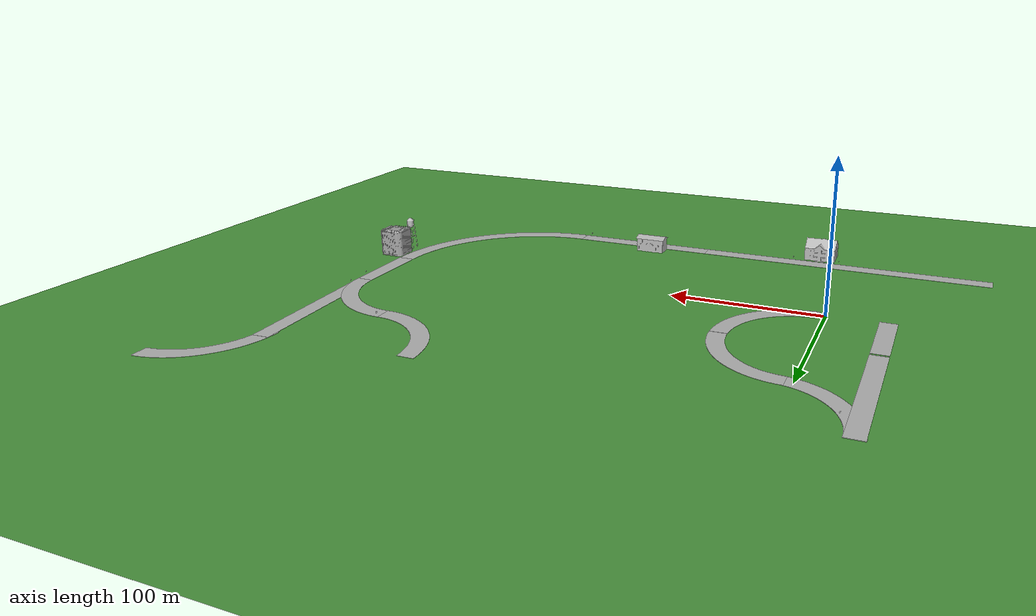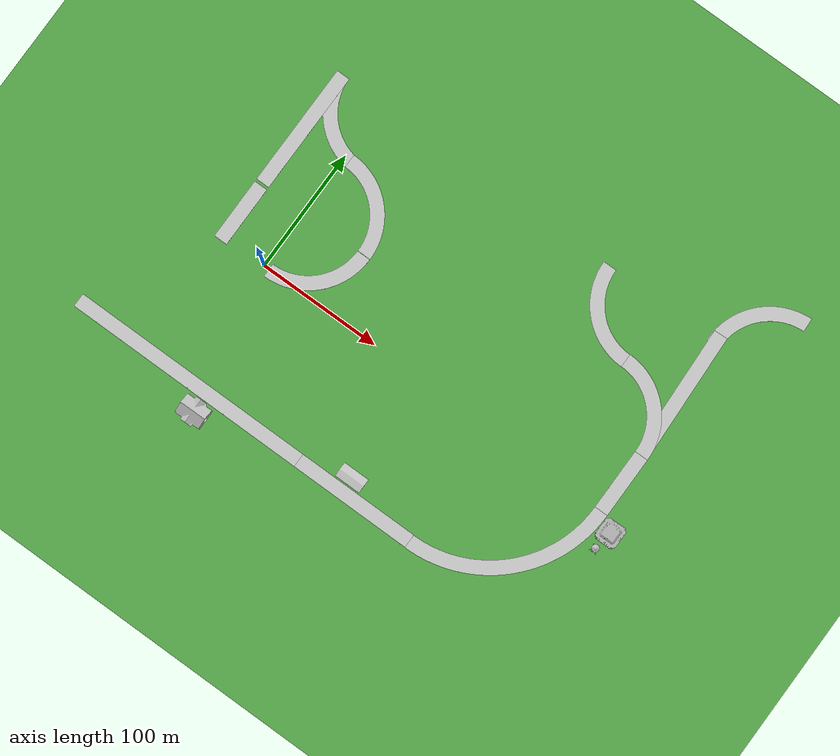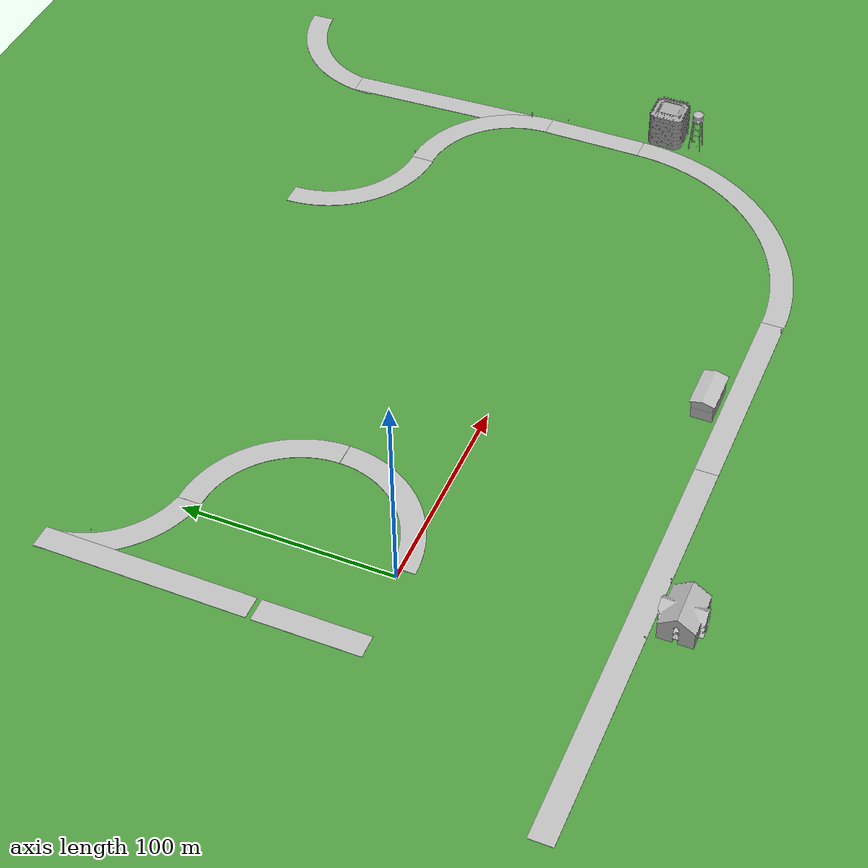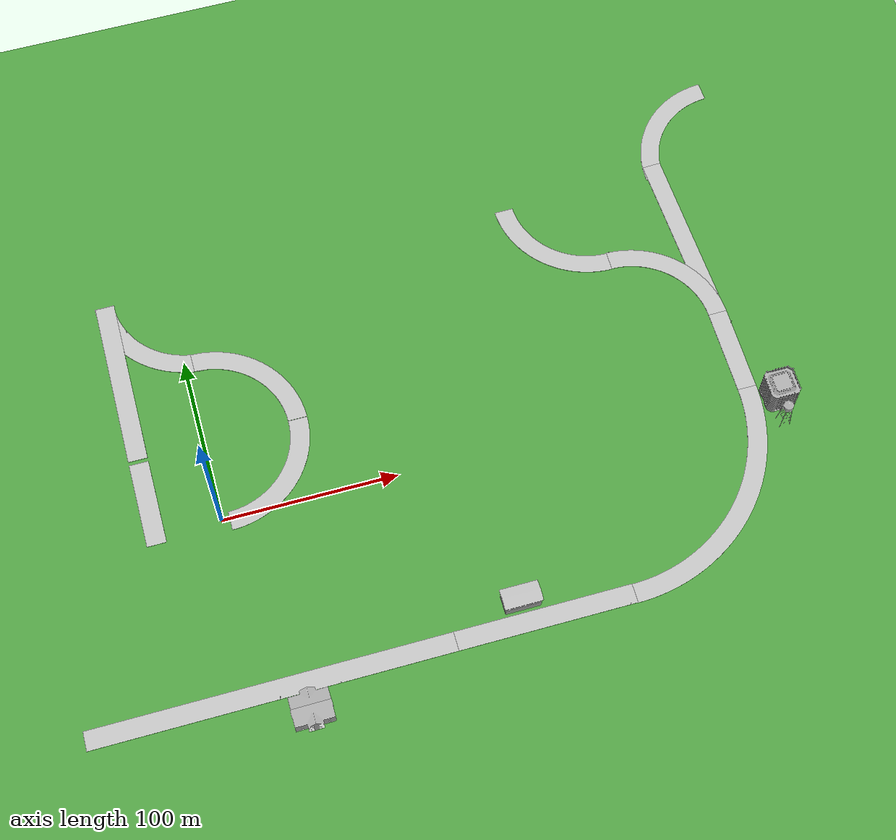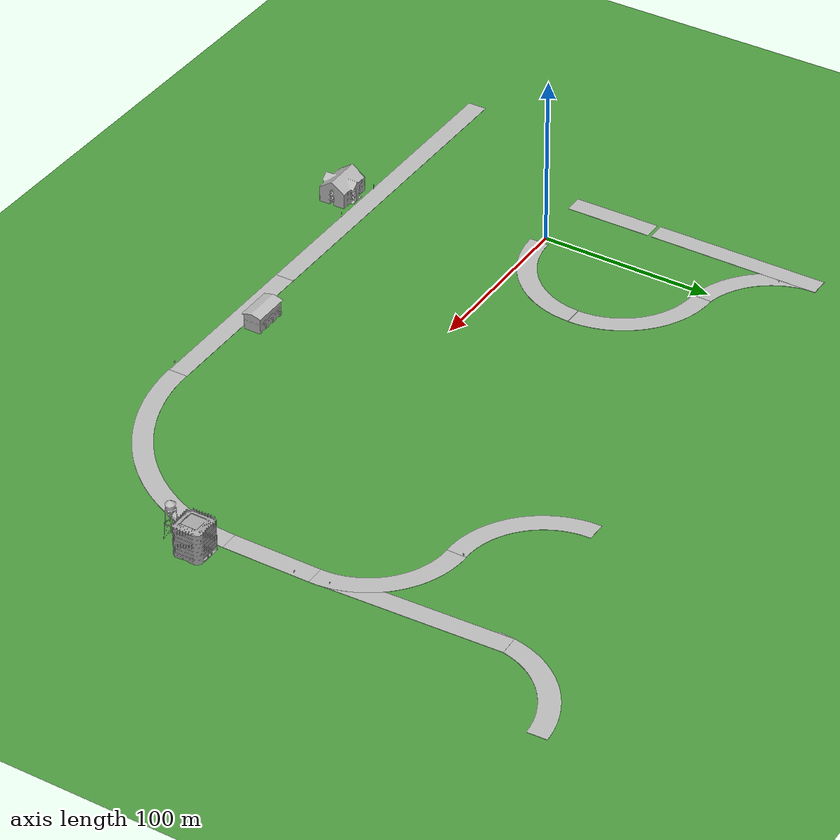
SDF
<sdf version="1.6">
 <world name="default">
  <model name="ground_plane">
   <static>1</static>
   <link name="link">
    <collision name="collision">
     <geometry><plane><normal>0 0 1</normal><size>10000 10000</size></plane></geometry>
     <surface><friction><ode><mu>100</mu><mu2>50</mu2></ode></friction></surface>
    </collision>
    <visual name="visual">
     <cast_shadows>0</cast_shadows>
     <geometry><plane><normal>0 0 1</normal><size>10000 10000</size></plane></geometry>
     <material>
      <script>
       <uri>model://ds_grass_background/materials/scripts</uri>
       <uri>model://ds_grass_background/materials/textures</uri>
       <name>GrassBackground</name>
      </script>
     </material>
    </visual>
    <velocity_decay><linear>0</linear><angular>0</angular></velocity_decay>
   </link>
  </model>
  <model name="(DS) Straight Road - 200m_8">
   <static>1</static>
   <link name="link">
    <inertial>
     <mass>1</mass>
     <inertia><ixx>1</ixx><iyy>1</iyy><izz>1</izz><ixy>0</ixy><ixz>0</ixz><iyz>0</iyz></inertia>
    </inertial>
    <collision name="collision">
     <geometry><mesh><uri>model://ds_straight_road_200m/meshes/straight_road_200m.dae</uri></mesh></geometry>
    </collision>
    <visual name="visual">
     <geometry><mesh><uri>model://ds_straight_road_200m/meshes/straight_road_200m.dae</uri></mesh></geometry>
    </visual>
   </link>
   <pose>4.98041 -90.7828 0 0 -0 0</pose>
  </model>
  <model name="(DS) Straight Road - 100m_0">
   <static>1</static>
   <link name="link">
    <inertial>
     <mass>1</mass>
     <inertia><ixx>1</ixx><iyy>1</iyy><izz>1</izz><ixy>0</ixy><ixz>0</ixz><iyz>0</iyz></inertia>
    </inertial>
    <collision name="collision">
     <geometry><mesh><uri>model://ds_straight_road_100m/meshes/straight_road_100m.dae</uri></mesh></geometry>
    </collision>
    <visual name="visual">
     <geometry><mesh><uri>model://ds_straight_road_100m/meshes/straight_road_100m.dae</uri></mesh></geometry>
    </visual>
   </link>
   <pose>154.969 -90.7906 0 0 -0 0</pose>
  </model>
  <model name="(DS) Curved Road - 100m_3">
   <static>1</static>
   <link name="link">
    <inertial>
     <mass>1</mass>
     <inertia><ixx>1</ixx><iyy>1</iyy><izz>1</izz><ixy>0</ixy><ixz>0</ixz><iyz>0</iyz></inertia>
    </inertial>
    <collision name="collision">
     <geometry><mesh><uri>model://ds_curved_road_100m/meshes/curved_road_100m.dae</uri></mesh></geometry>
    </collision>
    <visual name="visual">
     <geometry><mesh><uri>model://ds_curved_road_100m/meshes/curved_road_100m.dae</uri></mesh></geometry>
    </visual>
   </link>
   <pose>257.705 -53.7644 0 0 -0 0</pose>
  </model>
  <model name="(DS) Straight Road - 50m">
   <static>1</static>
   <link name="link">
    <inertial>
     <mass>1</mass>
     <inertia><ixx>1</ixx><iyy>1</iyy><izz>1</izz><ixy>0</ixy><ixz>0</ixz><iyz>0</iyz></inertia>
    </inertial>
    <collision name="collision">
     <geometry><mesh><uri>model://ds_straight_road_50m/meshes/straight_road_50m.dae</uri></mesh></geometry>
    </collision>
    <visual name="visual">
     <geometry><mesh><uri>model://ds_straight_road_50m/meshes/straight_road_50m.dae</uri></mesh></geometry>
    </visual>
   </link>
   <pose>314.936 23.9712 0 0 0 -1.5707</pose>
  </model>
  <model name="(DS) Curved Road - 50m_7">
   <static>1</static>
   <link name="link">
    <inertial>
     <mass>1</mass>
     <inertia><ixx>1</ixx><iyy>1</iyy><izz>1</izz><ixy>0</ixy><ixz>0</ixz><iyz>0</iyz></inertia>
    </inertial>
    <collision name="collision">
     <geometry><mesh><uri>model://ds_curved_road_50m/meshes/curved_road_50m.dae</uri></mesh></geometry>
    </collision>
    <visual name="visual">
     <geometry><mesh><uri>model://ds_curved_road_50m/meshes/curved_road_50m.dae</uri></mesh></geometry>
    </visual>
   </link>
   <pose>282.694 76.6819 0 0 -0 1.5707</pose>
  </model>
  <model name="(DS) Curved Road - 50m_9">
   <static>1</static>
   <link name="link">
    <inertial>
     <mass>1</mass>
     <inertia><ixx>1</ixx><iyy>1</iyy><izz>1</izz><ixy>0</ixy><ixz>0</ixz><iyz>0</iyz></inertia>
    </inertial>
    <collision name="collision">
     <geometry><mesh><uri>model://ds_curved_road_50m/meshes/curved_road_50m.dae</uri></mesh></geometry>
    </collision>
    <visual name="visual">
     <geometry><mesh><uri>model://ds_curved_road_50m/meshes/curved_road_50m.dae</uri></mesh></geometry>
    </visual>
   </link>
   <pose>227.236 120.969 0 0 0 -1.5707</pose>
  </model>
  <model name="speed_10">
   <link name="link">
    <collision name="collision">
     <geometry><mesh><scale>1 1 1</scale><uri>model://speed_10/meshes/speedlim_10.dae</uri></mesh></geometry>
    </collision>
    <visual name="visual">
     <geometry><mesh><scale>1 1 1</scale><uri>model://speed_10/meshes/speedlim_10.dae</uri></mesh></geometry>
    </visual>
    <inertial>
     <inertia><ixx>1</ixx><ixy>0</ixy><ixz>0</ixz><iyy>1</iyy><iyz>0</iyz><izz>1</izz></inertia>
     <mass>1</mass>
    </inertial>
   </link>
   <pose>200.707 -106.096 0.102229 2e-06 -1e-06 3.10057</pose>
  </model>
  <model name="speed_10_0">
   <link name="link">
    <collision name="collision">
     <geometry><mesh><scale>1 1 1</scale><uri>model://speed_10/meshes/speedlim_10.dae</uri></mesh></geometry>
    </collision>
    <visual name="visual">
     <geometry><mesh><scale>1 1 1</scale><uri>model://speed_10/meshes/speedlim_10.dae</uri></mesh></geometry>
    </visual>
    <inertial>
     <inertia><ixx>1</ixx><ixy>0</ixy><ixz>0</ixz><iyy>1</iyy><iyz>0</iyz><izz>1</izz></inertia>
     <mass>1</mass>
    </inertial>
   </link>
   <pose>310.131 40.5807 0.102221 2e-06 -2e-06 -1.63806</pose>
  </model>
  <model name="(DS) Curved Road - 50m_2">
   <static>1</static>
   <link name="link">
    <inertial>
     <mass>1</mass>
     <inertia><ixx>1</ixx><iyy>1</iyy><izz>1</izz><ixy>0</ixy><ixz>0</ixz><iyz>0</iyz></inertia>
    </inertial>
    <collision name="collision">
     <geometry><mesh><uri>model://ds_curved_road_50m/meshes/curved_road_50m.dae</uri></mesh></geometry>
    </collision>
    <visual name="visual">
     <geometry><mesh><uri>model://ds_curved_road_50m/meshes/curved_road_50m.dae</uri></mesh></geometry>
    </visual>
   </link>
   <pose>32.0995 20.9526 0 0 -0 0</pose>
  </model>
  <model name="apartment">
   <static>1</static>
   <link name="link">
    <collision name="collision">
     <geometry><mesh><uri>model://apartment/meshes/apartment.dae</uri></mesh></geometry>
    </collision>
    <visual name="visual">
     <geometry><mesh><uri>model://apartment/meshes/apartment.dae</uri></mesh></geometry>
    </visual>
   </link>
   <pose>22.467 -117.335 0 0 0 -1.56402</pose>
  </model>
  <model name="fire_station">
   <static>1</static>
   <link name="link">
    <collision name="main">
     <pose>0 -0.135 5 0 -0 0</pose>
     <geometry><box><size>19.98 9.68 10</size></box></geometry>
    </collision>
    <collision name="front_top">
     <pose>0 4.957 7 0 -0 0</pose>
     <geometry><box><size>20 0.515 6</size></box></geometry>
    </collision>
    <collision name="column_0">
     <pose>9.333 4.957 2 0 -0 0</pose>
     <geometry><box><size>1.315 0.515 4</size></box></geometry>
    </collision>
    <collision name="column_1">
     <pose>3.33 4.957 2 0 -0 0</pose>
     <geometry><box><size>2.63 0.515 4</size></box></geometry>
    </collision>
    <collision name="column_2">
     <pose>-3.33 4.957 2 0 -0 0</pose>
     <geometry><box><size>2.63 0.515 4</size></box></geometry>
    </collision>
    <collision name="column_3">
     <pose>-9.333 4.957 2 0 -0 0</pose>
     <geometry><box><size>1.315 0.515 4</size></box></geometry>
    </collision>
    <collision name="roof_back">
     <pose>0 -2.742 10.467 0.25 -0 0</pose>
     <geometry><box><size>21.47 6.12 0.28</size></box></geometry>
    </collision>
    <collision name="roof_front">
     <pose>0 3.12 10.467 -0.25 0 0</pose>
     <geometry><box><size>21.47 6.12 0.28</size></box></geometry>
    </collision>
    <collision name="roof_base">
     <pose>0 0.188 9.705 0 -0 0</pose>
     <geometry><box><size>21.47 11.86 0.28</size></box></geometry>
    </collision>
    <collision name="roof_filling_0">
     <pose>0 0.188 9.985 0 -0 0</pose>
     <geometry><box><size>21.47 9.53 0.28</size></box></geometry>
    </collision>
    <collision name="roof_filling_1">
     <pose>0 0.188 10.14 0 -0 0</pose>
     <geometry><box><size>21.47 8.41 0.28</size></box></geometry>
    </collision>
    <collision name="roof_filling_2">
     <pose>0 0.188 10.42 0 -0 0</pose>
     <geometry><box><size>21.47 6.25 0.28</size></box></geometry>
    </collision>
    <collision name="roof_filling_3">
     <pose>0 0.188 10.7 0 -0 0</pose>
     <geometry><box><size>21.47 4.05 0.28</size></box></geometry>
    </collision>
    <collision name="roof_filling_4">
     <pose>0 0.188 10.98 0 -0 0</pose>
     <geometry><box><size>21.47 1.83 0.28</size></box></geometry>
    </collision>
    <visual name="visual">
     <geometry><mesh><uri>model://fire_station/meshes/fire_station.dae</uri></mesh></geometry>
    </visual>
   </link>
   <pose>144.432 -88.6776 0 0 -0 0</pose>
  </model>
  <model name="Office Building">
   <static>1</static>
   <link name="link">
    <collision name="collision">
     <geometry><mesh><uri>model://office_building/meshes/office_building.dae</uri></mesh></geometry>
    </collision>
    <visual name="visual">
     <geometry><mesh><uri>model://office_building/meshes/office_building.dae</uri></mesh></geometry>
    </visual>
   </link>
   <pose>319.671 -10.8293 0 0 -0 0</pose>
  </model>
  <model name="water_tower">
   <static>1</static>
   <link name="link">
    <collision name="collision">
     <geometry><mesh><uri>model://water_tower/meshes/water_tower.dae</uri></mesh></geometry>
    </collision>
    <visual name="visual">
     <geometry><mesh><uri>model://water_tower/meshes/water_tower.dae</uri></mesh></geometry>
    </visual>
   </link>
   <pose>317.064 -26.4081 0 0 -0 0</pose>
  </model>
  <model name="stop">
   <link name="link">
    <collision name="collision">
     <geometry><mesh><scale>1 1 1</scale><uri>model://stop/meshes/stop.dae</uri></mesh></geometry>
    </collision>
    <visual name="visual">
     <geometry><mesh><scale>1 1 1</scale><uri>model://stop/meshes/stop.dae</uri></mesh></geometry>
    </visual>
    <inertial>
     <inertia><ixx>1</ixx><ixy>0</ixy><ixz>0</ixz><iyy>1</iyy><iyz>0</iyz><izz>1</izz></inertia>
     <mass>1</mass>
    </inertial>
   </link>
   <pose>8.11745 -105.858 0.102221 2e-06 -2e-06 2.93218</pose>
  </model>
  <model name="speed_20">
   <link name="link">
    <collision name="collision">
     <geometry><mesh><scale>1 1 1</scale><uri>model://speed_20/meshes/speedlim_20.dae</uri></mesh></geometry>
    </collision>
    <visual name="visual">
     <geometry><mesh><scale>1 1 1</scale><uri>model://speed_20/meshes/speedlim_20.dae</uri></mesh></geometry>
    </visual>
    <inertial>
     <inertia><ixx>1</ixx><ixy>0</ixy><ixz>0</ixz><iyy>1</iyy><iyz>0</iyz><izz>1</izz></inertia>
     <mass>1</mass>
    </inertial>
   </link>
   <pose>40.6512 -106.177 0.102221 2e-06 -2e-06 2.95184</pose>
  </model>
  <model name="(DS) Straight Road - 100m_4">
   <static>1</static>
   <link name="link">
    <inertial>
     <mass>1</mass>
     <inertia><ixx>1</ixx><iyy>1</iyy><izz>1</izz><ixy>0</ixy><ixz>0</ixz><iyz>0</iyz></inertia>
    </inertial>
    <collision name="collision">
     <geometry><mesh><uri>model://ds_straight_road_100m/meshes/straight_road_100m.dae</uri></mesh></geometry>
    </collision>
    <visual name="visual">
     <geometry><mesh><uri>model://ds_straight_road_100m/meshes/straight_road_100m.dae</uri></mesh></geometry>
    </visual>
   </link>
   <pose>312.272 105.889 -0.032356 0 0 -1.52847</pose>
  </model>
  <model name="left_turn_only">
   <link name="link">
    <collision name="collision">
     <geometry>
      <mesh><scale>1 1 1</scale><uri>model://left_turn_only/meshes/left_turn_only.dae</uri></mesh>
     </geometry>
    </collision>
    <visual name="visual">
     <geometry>
      <mesh><scale>1 1 1</scale><uri>model://left_turn_only/meshes/left_turn_only.dae</uri></mesh>
     </geometry>
    </visual>
    <inertial>
     <inertia><ixx>1</ixx><ixy>0</ixy><ixz>0</ixz><iyy>1</iyy><iyz>0</iyz><izz>1</izz></inertia>
     <mass>1</mass>
    </inertial>
   </link>
   <pose>308.368 59.881 0.102229 2e-06 -1e-06 -1.76523</pose>
  </model>
  <model name="(DS) Curved Road - 50m_10">
   <static>1</static>
   <link name="link">
    <inertial>
     <mass>1</mass>
     <inertia><ixx>1</ixx><iyy>1</iyy><izz>1</izz><ixy>0</ixy><ixz>0</ixz><iyz>0</iyz></inertia>
    </inertial>
    <collision name="collision">
     <geometry><mesh><uri>model://ds_curved_road_50m/meshes/curved_road_50m.dae</uri></mesh></geometry>
    </collision>
    <visual name="visual">
     <geometry><mesh><uri>model://ds_curved_road_50m/meshes/curved_road_50m.dae</uri></mesh></geometry>
    </visual>
   </link>
   <pose>320.736 175.053 -0.078351 0 0 -3.09893</pose>
  </model>
  <model name="speed_10_2">
   <link name="link">
    <collision name="collision">
     <geometry><mesh><scale>1 1 1</scale><uri>model://speed_10/meshes/speedlim_10.dae</uri></mesh></geometry>
    </collision>
    <visual name="visual">
     <geometry><mesh><scale>1 1 1</scale><uri>model://speed_10/meshes/speedlim_10.dae</uri></mesh></geometry>
    </visual>
    <inertial>
     <inertia><ixx>1</ixx><ixy>0</ixy><ixz>0</ixz><iyy>1</iyy><iyz>0</iyz><izz>1</izz></inertia>
     <mass>1</mass>
    </inertial>
   </link>
   <pose>256.248 103.599 0.102221 2e-06 -2e-06 -0.373289</pose>
  </model>
  <model name="(DS) Curved Road - 50m_15">
   <static>1</static>
   <link name="link">
    <inertial>
     <mass>1</mass>
     <inertia><ixx>1</ixx><iyy>1</iyy><izz>1</izz><ixy>0</ixy><ixz>0</ixz><iyz>0</iyz></inertia>
    </inertial>
    <collision name="collision">
     <geometry><mesh><uri>model://ds_curved_road_50m/meshes/curved_road_50m.dae</uri></mesh></geometry>
    </collision>
    <visual name="visual">
     <geometry><mesh><uri>model://ds_curved_road_50m/meshes/curved_road_50m.dae</uri></mesh></geometry>
    </visual>
   </link>
   <pose>-14.9046 120.569 -0.074861 0 0 -1.56669</pose>
  </model>
  <model name="(DS) Curved Road - 50m_16">
   <static>1</static>
   <link name="link">
    <inertial>
     <mass>1</mass>
     <inertia><ixx>1</ixx><iyy>1</iyy><izz>1</izz><ixy>0</ixy><ixz>0</ixz><iyz>0</iyz></inertia>
    </inertial>
    <collision name="collision">
     <geometry><mesh><uri>model://ds_curved_road_50m/meshes/curved_road_50m.dae</uri></mesh></geometry>
    </collision>
    <visual name="visual">
     <geometry><mesh><uri>model://ds_curved_road_50m/meshes/curved_road_50m.dae</uri></mesh></geometry>
    </visual>
   </link>
   <pose>32.2508 76.7105 -0.053832 0 -0 1.56744</pose>
  </model>
  <model name="(DS) Straight Road - 100m_7">
   <static>1</static>
   <link name="link">
    <inertial>
     <mass>1</mass>
     <inertia><ixx>1</ixx><iyy>1</iyy><izz>1</izz><ixy>0</ixy><ixz>0</ixz><iyz>0</iyz></inertia>
    </inertial>
    <collision name="collision">
     <geometry><mesh><uri>model://ds_straight_road_100m/meshes/straight_road_100m.dae</uri></mesh></geometry>
    </collision>
    <visual name="visual">
     <geometry><mesh><uri>model://ds_straight_road_100m/meshes/straight_road_100m.dae</uri></mesh></geometry>
    </visual>
   </link>
   <pose>-27.1356 98.0597 0 0 0 -1.57391</pose>
  </model>
  <model name="yield_2">
   <link name="link">
    <collision name="collision">
     <geometry><mesh><scale>1 1 1</scale><uri>model://yield/meshes/yield.dae</uri></mesh></geometry>
    </collision>
    <visual name="visual">
     <geometry><mesh><scale>1 1 1</scale><uri>model://yield/meshes/yield.dae</uri></mesh></geometry>
    </visual>
    <inertial>
     <inertia><ixx>1</ixx><ixy>0</ixy><ixz>0</ixz><iyy>1</iyy><iyz>0</iyz><izz>1</izz></inertia>
     <mass>1</mass>
    </inertial>
   </link>
   <pose>-27.539 128.438 0.02736 2e-06 -2e-06 -0.687185</pose>
  </model>
  <model name="(DS) Straight Road - 50m_1">
   <static>1</static>
   <link name="link">
    <inertial>
     <mass>1</mass>
     <inertia><ixx>1</ixx><iyy>1</iyy><izz>1</izz><ixy>0</ixy><ixz>0</ixz><iyz>0</iyz></inertia>
    </inertial>
    <collision name="collision">
     <geometry><mesh><uri>model://ds_straight_road_50m/meshes/straight_road_50m.dae</uri></mesh></geometry>
    </collision>
    <visual name="visual">
     <geometry><mesh><uri>model://ds_straight_road_50m/meshes/straight_road_50m.dae</uri></mesh></geometry>
    </visual>
   </link>
   <pose>-27.2493 20.9643 -0.060358 0 0 -1.56954</pose>
  </model>
 </world>
</sdf>
